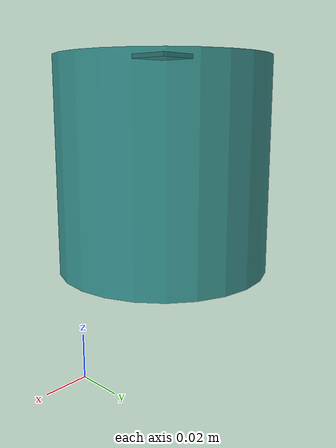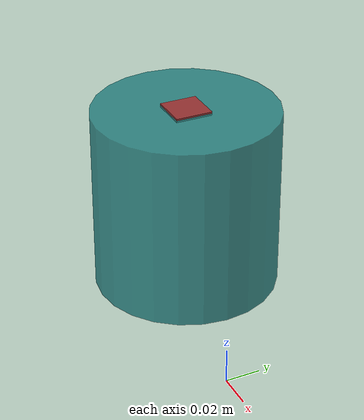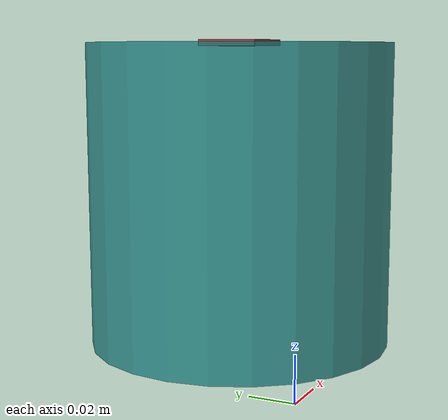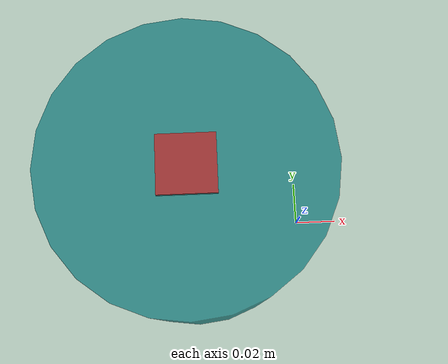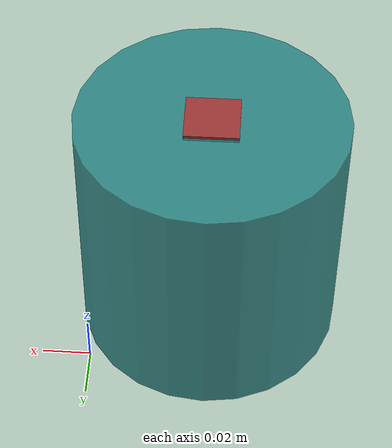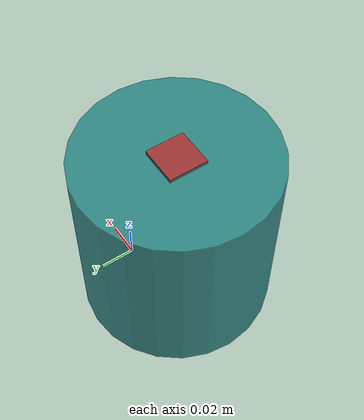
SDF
<?xml version="1.0"?>

<!--
  This file contains a cylinder which rotates only around
  the z-axis. The x and y values are fixed. The cylinder
  has arbitrary geometry.
-->

<sdf version="1.7">
  <model name="cylinder">

    <joint name="world_cylinder_offset" type="fixed">
      <child>cylinder_root</child>
      <parent>world</parent>
      <axis>
        <limit>
          <effort>0</effort>
        </limit>
      </axis>
    </joint>

    <link name="cylinder_root">
      <pose relative_to="__model__">-0.05 0.0 0.09 0.0 0 0</pose>
    </link>

    <joint name="cylinder_root_joint" type="revolute">
        <child>cylinder_link</child>
        <parent>cylinder_root</parent>
        <axis>
          <xyz>0 0 1</xyz>
          <limit>
            <effort>0</effort>
          </limit>
        </axis>
    </joint>

    <link name="cylinder_link">
      <pose relative_to="cylinder_root">0 0 0 0 0 0</pose>
      <inertial>
        <mass>1.0</mass>
        <inertia>
          <ixx>0.001</ixx>
          <ixy>0</ixy>
          <ixz>0</ixz>
          <iyy>0.001</iyy>
          <iyz>0</iyz>
          <izz>0.001</izz>
        </inertia>
      </inertial>

      <visual name="visual">
        <pose relative_to="cylinder_root">0 0 0 0 0 0</pose>
        <geometry>
          <cylinder>
            <radius>0.05</radius>
            <length>0.1</length>
          </cylinder>
        </geometry>
        <material>
          <diffuse>0.1 0.5 0.5 0.8</diffuse>
        </material>
      </visual>

      <visual name="visual_2">
        <pose> 0 0 0.05 0 0 0 </pose>
        <geometry>
          <box>
           <size>0.02 0.02 0.002 </size>
          </box>
        </geometry>
        <material>
          <diffuse>0.6 0.2 0.2 0.9</diffuse>
        </material>
      </visual>

      <collision name="collision">
        <pose> 0 0 0 0 0 0 </pose>
        <geometry>
            <cylinder>
              <radius>0.05</radius>
              <length>0.1</length>
            </cylinder>
          </geometry>
        <surface>
          <friction>
            <ode>
              <mu>1.0</mu>
              <mu2>1.0</mu2>
            </ode>
          </friction>
        </surface>
      </collision>

    </link>

  </model>
</sdf>
